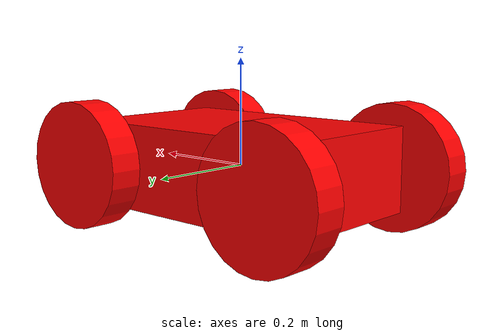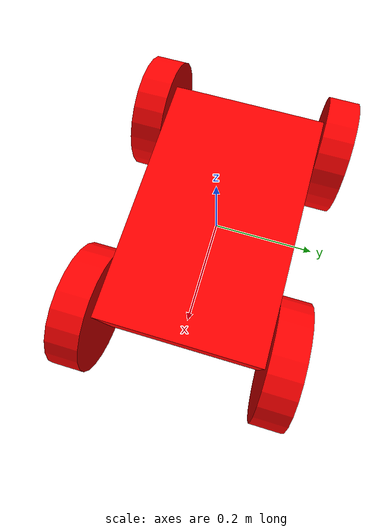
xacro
<?xml version="1.0"?>
<robot xmlns:xacro="http://www.ros.org/wiki/xacro" name="robot_name">

  <!--  variables -->

    <link name="base_link">

        <visual>
            <origin xyz="0.0 0.0 0.0" rpy="0.0 0.0 0.0"/>
            <geometry>
                <box size="0.5 0.316 0.16"/>
            </geometry>
            <material name="">
                <color rgba="1.0 0.0 0.0 1.0"/>
                <texture filename=""/>
            </material>
        </visual>

    </link>
    <xacro:macro name="wheel_link" params="prefix">
     <link name="${prefix}_wheel">
        <visual name="">
            <origin xyz="0.0 0.0 0.0" rpy="1.57 0.0 0.0"/>
            <geometry>
                <cylinder radius="0.12" length="0.0615"/>
            </geometry>
            <material name="">
                <color rgba="1.0 0.0 0.0 1.0"/>
                <texture filename=""/>
            </material>
        </visual>
     </link>
    </xacro:macro>

    <xacro:wheel_link prefix="front_left" />
    <xacro:wheel_link prefix="front_right" />
    <xacro:wheel_link prefix="near_left" />
    <xacro:wheel_link prefix="near_right" />

    <xacro:macro name="wheel_joint" params="prefix x y">
     <joint name="${prefix}_joint" type="continuous">
        <origin xyz="${x} ${y} 0.0" rpy="0.0 0.0 0.0"/>
        <parent link="base_link"/>
        <child link="${prefix}_wheel"/>
        <axis xyz="0.0 0.1 0.0"/>
        <limit lower="0.0" upper="0.0" effort="0.0" velocity="0.0"/>
     </joint>
    </xacro:macro>

    <xacro:wheel_joint prefix="front_left" x="0.225" y="${(0.0615 + 0.316)/2}" />
    <xacro:wheel_joint prefix="front_right" x="0.225" y="${-(0.0615 + 0.316)/2}" />
    <xacro:wheel_joint prefix="near_left" x="-0.225" y="${(0.0615 + 0.316)/2}" />
    <xacro:wheel_joint prefix="near_right" x="-0.225" y="${-(0.0615 + 0.316)/2}" />

</robot>
